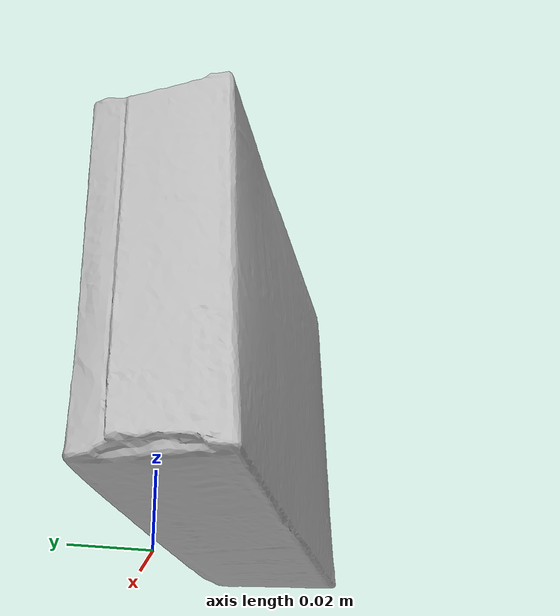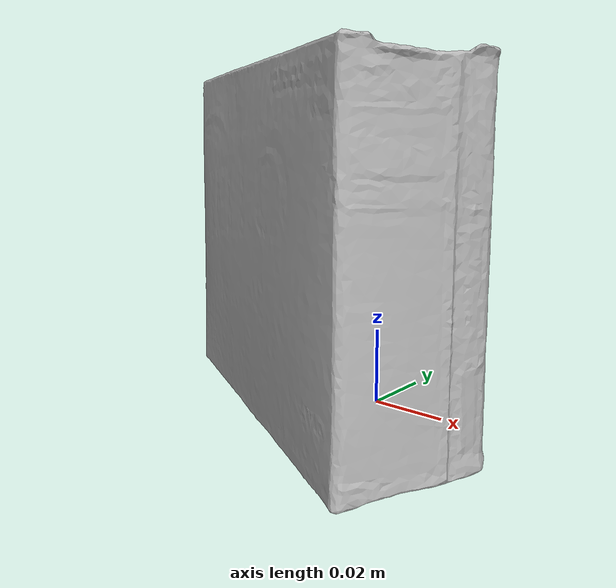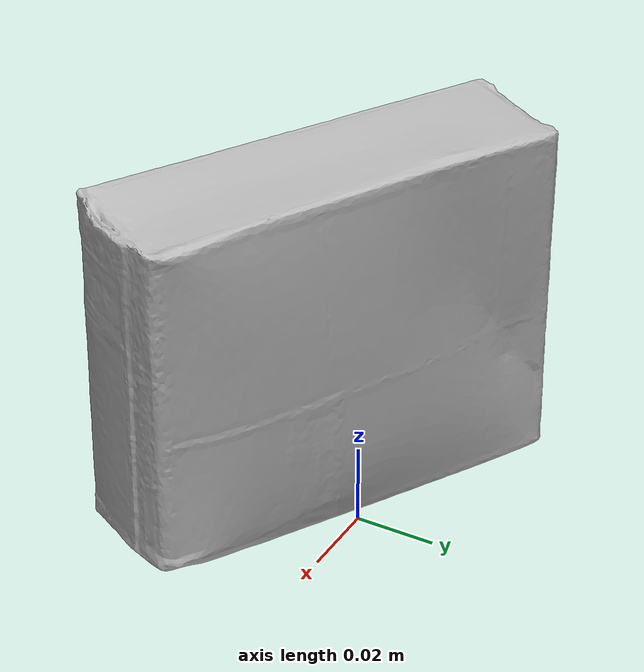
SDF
<?xml version="1.0"?>
<sdf version="1.6">
  <model name="pudding_box">
    <link name="link">
      <inertial>
        <mass>0.187</mass>
        <inertia>
          <ixx>0.000142525</ixx>
          <ixy>0.0</ixy>
          <ixz>0.0</ixz>
          <iyy>0.000207648</iyy>
          <iyz>0.0</iyz>
          <izz>0.000311994</izz>
        </inertia>
        <pose>0 0 0.0175 0 0 0</pose>
      </inertial>
      <collision name="collision">
        <pose>0 0 0.0175 0 0 0</pose>
        <geometry>
          <box>
            <size>0.110 0.089 0.035</size>
          </box>
        </geometry>
      </collision>
      <visual name="visual">
        <pose>-0.01 -0.015 0 0 0 -0.5</pose>
        <geometry>
          <mesh>
            <uri>meshes/textured.dae</uri>
          </mesh>
        </geometry>
      </visual>
    </link>
  </model>
</sdf>
